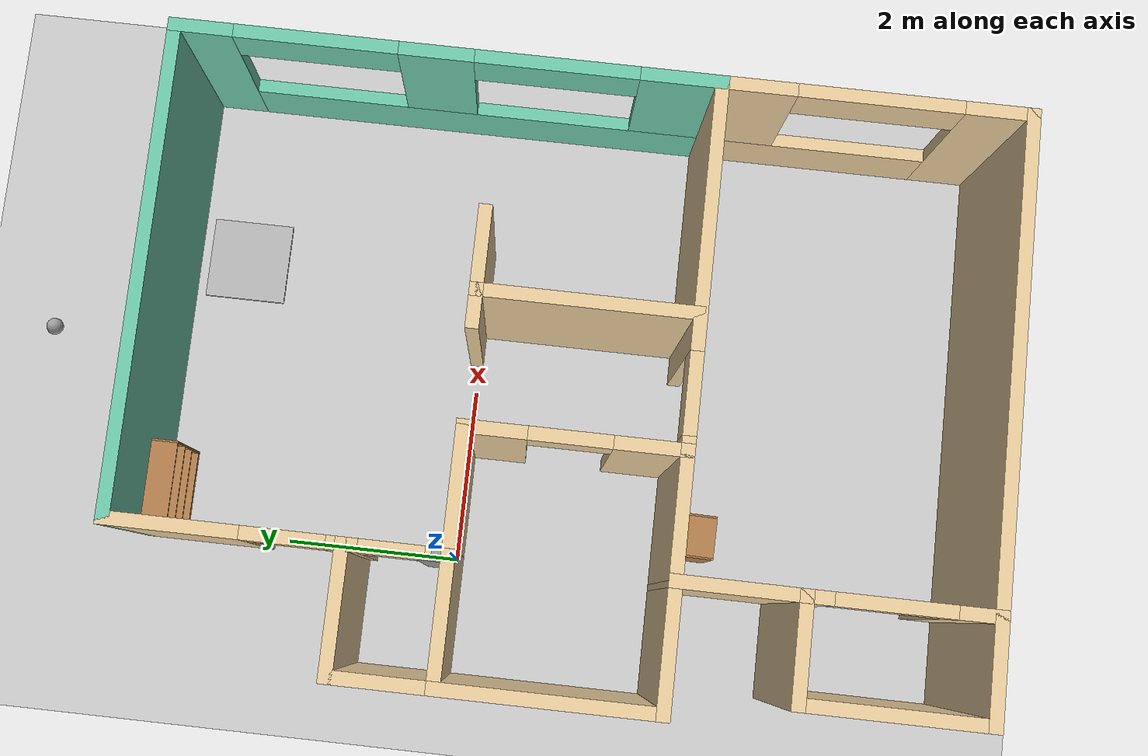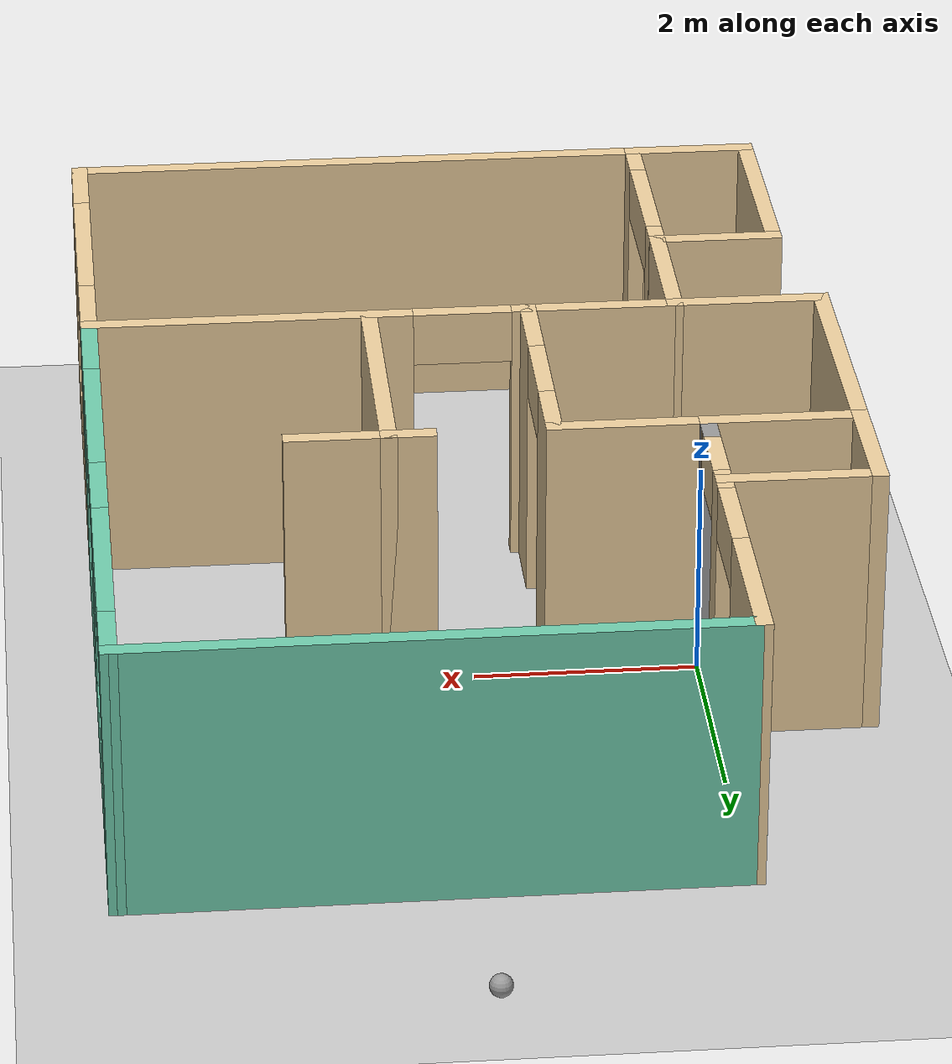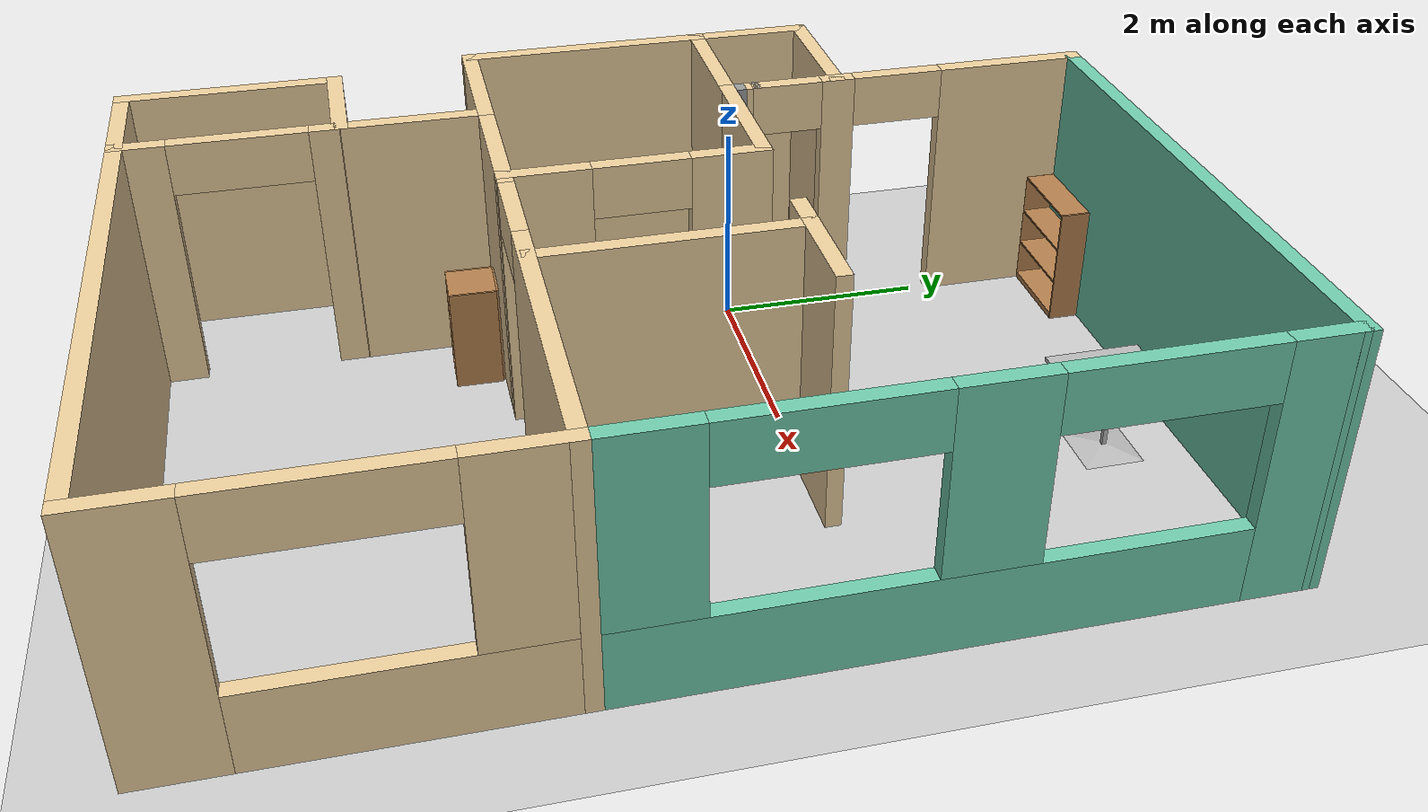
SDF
<sdf version="1.6">
 <world name="default">
  <plugin name="hello" filename="libhello.so"/>
  <light name="sun" type="directional">
   <pose>0 0 10 0 -0 0</pose>
   <diffuse>0.8 0.8 0.8 1</diffuse>
   <specular>0.2 0.2 0.2 1</specular>
   <attenuation>
    <range>1000</range>
    <constant>0.9</constant>
    <linear>0.01</linear>
    <quadratic>0.001</quadratic>
   </attenuation>
   <direction>-0.5 0.1 -0.9</direction>
  </light>
  <model name="ground_plane">
   <static>1</static>
   <link name="link">
    <collision name="collision">
     <geometry><plane><normal>0 0 1</normal><size>100 100</size></plane></geometry>
     <surface>
      <contact><collide_bitmask>65535</collide_bitmask></contact>
      <friction><ode><mu>100</mu><mu2>50</mu2></ode></friction>
     </surface>
    </collision>
    <visual name="visual">
     <cast_shadows>0</cast_shadows>
     <geometry><plane><normal>0 0 1</normal><size>100 100</size></plane></geometry>
     <material>
      <script><uri>file://media/materials/scripts/gazebo.material</uri><name>Gazebo/Grey</name></script>
     </material>
    </visual>
   </link>
  </model>
  <gravity>0 0 -9.8</gravity>
  <magnetic_field>6e-06 2.3e-05 -4.2e-05</magnetic_field>
  <atmosphere type="adiabatic"/>
  <physics name="default_physics" default="0" type="ode">
   <max_step_size>0.001</max_step_size>
   <real_time_factor>1</real_time_factor>
   <real_time_update_rate>1000</real_time_update_rate>
  </physics>
  <scene><ambient>0.4 0.4 0.4 1</ambient><background>0.7 0.7 0.7 1</background><shadows>1</shadows></scene>
  <audio><device>default</device></audio>
  <spherical_coordinates>
   <surface_model>EARTH_WGS84</surface_model>
   <latitude_deg>0</latitude_deg>
   <longitude_deg>0</longitude_deg>
   <elevation>0</elevation>
   <heading_deg>0</heading_deg>
  </spherical_coordinates>
  <model name="combined_model">
   <model name="apt_1br">
    <pose>0.440605 -1.37151 0 0 -0 0</pose>
    <link name="Wall_10">
     <collision name="Wall_10_Collision">
      <geometry><box><size>5.5 0.15 2.5</size></box></geometry>
      <pose>0 0 1.25 0 -0 0</pose>
     </collision>
     <visual name="Wall_10_Visual">
      <pose>0 0 1.25 0 -0 0</pose>
      <geometry><box><size>5.5 0.15 2.5</size></box></geometry>
      <material>
       <script><uri>file://media/materials/scripts/gazebo.material</uri><name>Gazebo/Grey</name></script>
       <ambient>0.921569 0.807843 0.615686 1</ambient>
      </material>
      <meta><layer>0</layer></meta>
     </visual>
     <pose>0.674919 -4.65002 0 0 -0 3.14159</pose>
    </link>
    <link name="Wall_21">
     <collision name="Wall_21_Collision">
      <geometry><box><size>1.5 0.15 2.5</size></box></geometry>
      <pose>0 0 1.25 0 -0 0</pose>
     </collision>
     <visual name="Wall_21_Visual">
      <pose>0 0 1.25 0 -0 0</pose>
      <geometry><box><size>1.5 0.15 2.5</size></box></geometry>
      <material>
       <script><uri>file://media/materials/scripts/gazebo.material</uri><name>Gazebo/Grey</name></script>
       <ambient>0.921569 0.807843 0.615686 1</ambient>
      </material>
      <meta><layer>0</layer></meta>
     </visual>
     <pose>-1.32508 1.04998 0 0 -0 3.14159</pose>
    </link>
    <link name="Wall_29">
     <pose>3.34992 1.67498 0 0 -0 -1.5708</pose>
     <visual name="Wall_29_Visual_0">
      <pose>-2.69448 0 1.25 0 -0 0</pose>
      <geometry><box><size>0.71105 0.15 2.5</size></box></geometry>
      <material>
       <script><uri>file://media/materials/scripts/gazebo.material</uri><name>Gazebo/Grey</name></script>
       <ambient>0.435294 0.796078 0.67451 1</ambient>
      </material>
      <meta><layer>0</layer></meta>
     </visual>
     <collision name="Wall_29_Collision_0">
      <geometry><box><size>0.71105 0.15 2.5</size></box></geometry>
      <pose>-2.69448 0 1.25 0 -0 0</pose>
     </collision>
     <visual name="Wall_29_Visual_1">
      <pose>0.355525 0 0.375 0 -0 0</pose>
      <geometry><box><size>5.38895 0.15 0.75</size></box></geometry>
      <material>
       <script><uri>file://media/materials/scripts/gazebo.material</uri><name>Gazebo/Grey</name></script>
       <ambient>0.435294 0.796078 0.67451 1</ambient>
      </material>
      <meta><layer>0</layer></meta>
     </visual>
     <collision name="Wall_29_Collision_1">
      <geometry><box><size>5.38895 0.15 0.75</size></box></geometry>
      <pose>0.355525 0 0.375 0 -0 0</pose>
     </collision>
     <visual name="Wall_29_Visual_2">
      <pose>-0.124805 0 1.625 0 -0 0</pose>
      <geometry><box><size>0.82829 0.15 1.75</size></box></geometry>
      <material>
       <script><uri>file://media/materials/scripts/gazebo.material</uri><name>Gazebo/Grey</name></script>
       <ambient>0.435294 0.796078 0.67451 1</ambient>
      </material>
      <meta><layer>0</layer></meta>
     </visual>
     <collision name="Wall_29_Collision_2">
      <geometry><box><size>0.82829 0.15 1.75</size></box></geometry>
      <pose>-0.124805 0 1.625 0 -0 0</pose>
     </collision>
     <visual name="Wall_29_Visual_3">
      <pose>2.56967 0 1.625 0 -0 0</pose>
      <geometry><box><size>0.96066 0.15 1.75</size></box></geometry>
      <material>
       <script><uri>file://media/materials/scripts/gazebo.material</uri><name>Gazebo/Grey</name></script>
       <ambient>0.435294 0.796078 0.67451 1</ambient>
      </material>
      <meta><layer>0</layer></meta>
     </visual>
     <collision name="Wall_29_Collision_3">
      <geometry><box><size>0.96066 0.15 1.75</size></box></geometry>
      <pose>2.56967 0 1.625 0 -0 0</pose>
     </collision>
     <visual name="Wall_29_Visual_4">
      <pose>-1.43895 0 2.225 0 -0 0</pose>
      <geometry><box><size>1.8 0.15 0.55</size></box></geometry>
      <material>
       <script><uri>file://media/materials/scripts/gazebo.material</uri><name>Gazebo/Grey</name></script>
       <ambient>0.435294 0.796078 0.67451 1</ambient>
      </material>
      <meta><layer>0</layer></meta>
     </visual>
     <collision name="Wall_29_Collision_4">
      <geometry><box><size>1.8 0.15 0.55</size></box></geometry>
      <pose>-1.43895 0 2.225 0 -0 0</pose>
     </collision>
     <visual name="Wall_29_Visual_5">
      <pose>1.18934 0 2.225 0 -0 0</pose>
      <geometry><box><size>1.8 0.15 0.55</size></box></geometry>
      <material>
       <script><uri>file://media/materials/scripts/gazebo.material</uri><name>Gazebo/Grey</name></script>
       <ambient>0.435294 0.796078 0.67451 1</ambient>
      </material>
      <meta><layer>0</layer></meta>
     </visual>
     <collision name="Wall_29_Collision_5">
      <geometry><box><size>1.8 0.15 0.55</size></box></geometry>
      <pose>1.18934 0 2.225 0 -0 0</pose>
     </collision>
    </link>
    <link name="Wall_31">
     <pose>3.34992 -2.97502 0 0 -0 1.5708</pose>
     <visual name="Wall_31_Visual_0">
      <pose>-1.34686 0 1.25 0 -0 0</pose>
      <geometry><box><size>0.806273 0.15 2.5</size></box></geometry>
      <material>
       <script><uri>file://media/materials/scripts/gazebo.material</uri><name>Gazebo/Grey</name></script>
       <ambient>0.921569 0.807843 0.615686 1</ambient>
      </material>
      <meta><layer>0</layer></meta>
     </visual>
     <collision name="Wall_31_Collision_0">
      <geometry><box><size>0.806273 0.15 2.5</size></box></geometry>
      <pose>-1.34686 0 1.25 0 -0 0</pose>
     </collision>
     <visual name="Wall_31_Visual_1">
      <pose>0.403136 0 0.375 0 -0 0</pose>
      <geometry><box><size>2.69373 0.15 0.75</size></box></geometry>
      <material>
       <script><uri>file://media/materials/scripts/gazebo.material</uri><name>Gazebo/Grey</name></script>
       <ambient>0.921569 0.807843 0.615686 1</ambient>
      </material>
      <meta><layer>0</layer></meta>
     </visual>
     <collision name="Wall_31_Collision_1">
      <geometry><box><size>2.69373 0.15 0.75</size></box></geometry>
      <pose>0.403136 0 0.375 0 -0 0</pose>
     </collision>
     <visual name="Wall_31_Visual_2">
      <pose>1.30314 0 1.625 0 -0 0</pose>
      <geometry><box><size>0.893727 0.15 1.75</size></box></geometry>
      <material>
       <script><uri>file://media/materials/scripts/gazebo.material</uri><name>Gazebo/Grey</name></script>
       <ambient>0.921569 0.807843 0.615686 1</ambient>
      </material>
      <meta><layer>0</layer></meta>
     </visual>
     <collision name="Wall_31_Collision_2">
      <geometry><box><size>0.893727 0.15 1.75</size></box></geometry>
      <pose>1.30314 0 1.625 0 -0 0</pose>
     </collision>
     <visual name="Wall_31_Visual_3">
      <pose>-0.043727 0 2.225 0 -0 0</pose>
      <geometry><box><size>1.8 0.15 0.55</size></box></geometry>
      <material>
       <script><uri>file://media/materials/scripts/gazebo.material</uri><name>Gazebo/Grey</name></script>
       <ambient>0.921569 0.807843 0.615686 1</ambient>
      </material>
      <meta><layer>0</layer></meta>
     </visual>
     <collision name="Wall_31_Collision_3">
      <geometry><box><size>1.8 0.15 0.55</size></box></geometry>
      <pose>-0.043727 0 2.225 0 -0 0</pose>
     </collision>
    </link>
    <link name="Wall_33">
     <pose>-0.650081 -0.125024 0 0 -0 -1.5708</pose>
     <visual name="Wall_33_Visual_0">
      <pose>-0.874194 0 1.25 0 -0 0</pose>
      <geometry><box><size>0.751611 0.15 2.5</size></box></geometry>
      <material>
       <script><uri>file://media/materials/scripts/gazebo.material</uri><name>Gazebo/Grey</name></script>
       <ambient>0.921569 0.807843 0.615686 1</ambient>
      </material>
      <meta><layer>0</layer></meta>
     </visual>
     <collision name="Wall_33_Collision_0">
      <geometry><box><size>0.751611 0.15 2.5</size></box></geometry>
      <pose>-0.874194 0 1.25 0 -0 0</pose>
     </collision>
     <visual name="Wall_33_Visual_1">
      <pose>0.825806 0 1.25 0 -0 0</pose>
      <geometry><box><size>0.848389 0.15 2.5</size></box></geometry>
      <material>
       <script><uri>file://media/materials/scripts/gazebo.material</uri><name>Gazebo/Grey</name></script>
       <ambient>0.921569 0.807843 0.615686 1</ambient>
      </material>
      <meta><layer>0</layer></meta>
     </visual>
     <collision name="Wall_33_Collision_1">
      <geometry><box><size>0.848389 0.15 2.5</size></box></geometry>
      <pose>0.825806 0 1.25 0 -0 0</pose>
     </collision>
     <visual name="Wall_33_Visual_2">
      <pose>-0.048389 0 2.25 0 -0 0</pose>
      <geometry><box><size>0.9 0.15 0.5</size></box></geometry>
      <material>
       <script><uri>file://media/materials/scripts/gazebo.material</uri><name>Gazebo/Grey</name></script>
       <ambient>0.921569 0.807843 0.615686 1</ambient>
      </material>
      <meta><layer>0</layer></meta>
     </visual>
     <collision name="Wall_33_Collision_2">
      <geometry><box><size>0.9 0.15 0.5</size></box></geometry>
      <pose>-0.048389 0 2.25 0 -0 0</pose>
     </collision>
    </link>
    <link name="Wall_34">
     <collision name="Wall_34_Collision">
      <geometry><box><size>1.5 0.15 2.5</size></box></geometry>
      <pose>0 0 1.25 0 -0 0</pose>
     </collision>
     <visual name="Wall_34_Visual">
      <pose>0 0 1.25 0 -0 0</pose>
      <geometry><box><size>1.5 0.15 2.5</size></box></geometry>
      <material>
       <script><uri>file://media/materials/scripts/gazebo.material</uri><name>Gazebo/Grey</name></script>
       <ambient>0.921569 0.807843 0.615686 1</ambient>
      </material>
      <meta><layer>0</layer></meta>
     </visual>
     <pose>-1.32508 -1.30002 0 0 -0 3.14159</pose>
    </link>
    <link name="Wall_36">
     <pose>1.34992 -1.30002 0 0 -0 0</pose>
     <visual name="Wall_36_Visual_0">
      <pose>-1.96133 0 1.25 0 -0 0</pose>
      <geometry><box><size>0.227341 0.15 2.5</size></box></geometry>
      <material>
       <script><uri>file://media/materials/scripts/gazebo.material</uri><name>Gazebo/Grey</name></script>
       <ambient>0.921569 0.807843 0.615686 1</ambient>
      </material>
      <meta><layer>0</layer></meta>
     </visual>
     <collision name="Wall_36_Collision_0">
      <geometry><box><size>0.227341 0.15 2.5</size></box></geometry>
      <pose>-1.96133 0 1.25 0 -0 0</pose>
     </collision>
     <visual name="Wall_36_Visual_1">
      <pose>0.56367 0 1.25 0 -0 0</pose>
      <geometry><box><size>3.02266 0.15 2.5</size></box></geometry>
      <material>
       <script><uri>file://media/materials/scripts/gazebo.material</uri><name>Gazebo/Grey</name></script>
       <ambient>0.921569 0.807843 0.615686 1</ambient>
      </material>
      <meta><layer>0</layer></meta>
     </visual>
     <collision name="Wall_36_Collision_1">
      <geometry><box><size>3.02266 0.15 2.5</size></box></geometry>
      <pose>0.56367 0 1.25 0 -0 0</pose>
     </collision>
     <visual name="Wall_36_Visual_2">
      <pose>-1.39766 0 2.25 0 -0 0</pose>
      <geometry><box><size>0.9 0.15 0.5</size></box></geometry>
      <material>
       <script><uri>file://media/materials/scripts/gazebo.material</uri><name>Gazebo/Grey</name></script>
       <ambient>0.921569 0.807843 0.615686 1</ambient>
      </material>
      <meta><layer>0</layer></meta>
     </visual>
     <collision name="Wall_36_Collision_2">
      <geometry><box><size>0.9 0.15 0.5</size></box></geometry>
      <pose>-1.39766 0 2.25 0 -0 0</pose>
     </collision>
    </link>
    <link name="Wall_38">
     <collision name="Wall_38_Collision">
      <geometry><box><size>2.5 0.15 2.5</size></box></geometry>
      <pose>0 0 1.25 0 -0 0</pose>
     </collision>
     <visual name="Wall_38_Visual">
      <pose>0 0 1.25 0 -0 0</pose>
      <geometry><box><size>2.5 0.15 2.5</size></box></geometry>
      <material>
       <script><uri>file://media/materials/scripts/gazebo.material</uri><name>Gazebo/Grey</name></script>
       <ambient>0.921569 0.807843 0.615686 1</ambient>
      </material>
      <meta><layer>0</layer></meta>
     </visual>
     <pose>0.806186 -0.096149 0 0 -0 1.5708</pose>
    </link>
    <link name="Wall_41">
     <collision name="Wall_41_Collision">
      <geometry><box><size>1 0.15 2.5</size></box></geometry>
      <pose>0 0 1.25 0 -0 0</pose>
     </collision>
     <visual name="Wall_41_Visual">
      <pose>0 0 1.25 0 -0 0</pose>
      <geometry><box><size>1 0.15 2.5</size></box></geometry>
      <material>
       <script><uri>file://media/materials/scripts/gazebo.material</uri><name>Gazebo/Grey</name></script>
       <ambient>0.921569 0.807843 0.615686 1</ambient>
      </material>
      <meta><layer>0</layer></meta>
     </visual>
     <pose>1.23119 1.07885 0 0 -0 0</pose>
    </link>
    <link name="Wall_43">
     <collision name="Wall_43_Collision">
      <geometry><box><size>0.5 0.15 2.5</size></box></geometry>
      <pose>0 0 1.25 0 -0 0</pose>
     </collision>
     <visual name="Wall_43_Visual">
      <pose>0 0 1.25 0 -0 0</pose>
      <geometry><box><size>0.5 0.15 2.5</size></box></geometry>
      <material>
       <script><uri>file://media/materials/scripts/gazebo.material</uri><name>Gazebo/Grey</name></script>
       <ambient>0.921569 0.807843 0.615686 1</ambient>
      </material>
      <meta><layer>0</layer></meta>
     </visual>
     <pose>0.631186 1.07885 0 0 -0 3.14159</pose>
    </link>
    <link name="Wall_5">
     <pose>-2.00008 2.96898 0 0 -0 1.5708</pose>
     <visual name="Wall_5_Visual_0">
      <pose>-1.71167 0 1.25 0 -0 0</pose>
      <geometry><box><size>0.064664 0.15 2.5</size></box></geometry>
      <material>
       <script><uri>file://media/materials/scripts/gazebo.material</uri><name>Gazebo/Grey</name></script>
       <ambient>0.921569 0.807843 0.615686 1</ambient>
      </material>
      <meta><layer>0</layer></meta>
     </visual>
     <collision name="Wall_5_Collision_0">
      <geometry><box><size>0.064664 0.15 2.5</size></box></geometry>
      <pose>-1.71167 0 1.25 0 -0 0</pose>
     </collision>
     <visual name="Wall_5_Visual_1">
      <pose>-0.81386 0 1.25 0 -0 0</pose>
      <geometry><box><size>0.330951 0.15 2.5</size></box></geometry>
      <material>
       <script><uri>file://media/materials/scripts/gazebo.material</uri><name>Gazebo/Grey</name></script>
       <ambient>0.921569 0.807843 0.615686 1</ambient>
      </material>
      <meta><layer>0</layer></meta>
     </visual>
     <collision name="Wall_5_Collision_1">
      <geometry><box><size>0.330951 0.15 2.5</size></box></geometry>
      <pose>-0.81386 0 1.25 0 -0 0</pose>
     </collision>
     <visual name="Wall_5_Visual_2">
      <pose>0.997808 0 1.25 0 -0 0</pose>
      <geometry><box><size>1.49239 0.15 2.5</size></box></geometry>
      <material>
       <script><uri>file://media/materials/scripts/gazebo.material</uri><name>Gazebo/Grey</name></script>
       <ambient>0.921569 0.807843 0.615686 1</ambient>
      </material>
      <meta><layer>0</layer></meta>
     </visual>
     <collision name="Wall_5_Collision_2">
      <geometry><box><size>1.49239 0.15 2.5</size></box></geometry>
      <pose>0.997808 0 1.25 0 -0 0</pose>
     </collision>
     <visual name="Wall_5_Visual_3">
      <pose>-1.32934 0 2.25 0 -0 0</pose>
      <geometry><box><size>0.7 0.15 0.5</size></box></geometry>
      <material>
       <script><uri>file://media/materials/scripts/gazebo.material</uri><name>Gazebo/Grey</name></script>
       <ambient>0.921569 0.807843 0.615686 1</ambient>
      </material>
      <meta><layer>0</layer></meta>
     </visual>
     <collision name="Wall_5_Collision_3">
      <geometry><box><size>0.7 0.15 0.5</size></box></geometry>
      <pose>-1.32934 0 2.25 0 -0 0</pose>
     </collision>
     <visual name="Wall_5_Visual_4">
      <pose>-0.198385 0 2.25 0 -0 0</pose>
      <geometry><box><size>0.9 0.15 0.5</size></box></geometry>
      <material>
       <script><uri>file://media/materials/scripts/gazebo.material</uri><name>Gazebo/Grey</name></script>
       <ambient>0.921569 0.807843 0.615686 1</ambient>
      </material>
      <meta><layer>0</layer></meta>
     </visual>
     <collision name="Wall_5_Collision_4">
      <geometry><box><size>0.9 0.15 0.5</size></box></geometry>
      <pose>-0.198385 0 2.25 0 -0 0</pose>
     </collision>
    </link>
    <link name="Wall_54">
     <collision name="Wall_54_Collision">
      <geometry><box><size>1.5 0.15 2.5</size></box></geometry>
      <pose>0 0 1.25 0 -0 0</pose>
     </collision>
     <visual name="Wall_54_Visual">
      <pose>0 0 1.25 0 -0 0</pose>
      <geometry><box><size>1.5 0.15 2.5</size></box></geometry>
      <material>
       <script><uri>file://media/materials/scripts/gazebo.material</uri><name>Gazebo/Grey</name></script>
       <ambient>0.921569 0.807843 0.615686 1</ambient>
      </material>
      <meta><layer>0</layer></meta>
     </visual>
     <pose>-2.67508 1.04998 0 0 -0 3.14159</pose>
    </link>
    <link name="Wall_55">
     <collision name="Wall_55_Collision">
      <geometry><box><size>2.5 0.15 2.5</size></box></geometry>
      <pose>0 0 1.25 0 -0 0</pose>
     </collision>
     <visual name="Wall_55_Visual">
      <pose>0 0 1.25 0 -0 0</pose>
      <geometry><box><size>2.5 0.15 2.5</size></box></geometry>
      <material>
       <script><uri>file://media/materials/scripts/gazebo.material</uri><name>Gazebo/Grey</name></script>
       <ambient>0.921569 0.807843 0.615686 1</ambient>
      </material>
      <meta><layer>0</layer></meta>
     </visual>
     <pose>-3.35008 -0.125024 0 0 -0 -1.5708</pose>
    </link>
    <link name="Wall_56">
     <collision name="Wall_56_Collision">
      <geometry><box><size>1.5 0.15 2.5</size></box></geometry>
      <pose>0 0 1.25 0 -0 0</pose>
     </collision>
     <visual name="Wall_56_Visual">
      <pose>0 0 1.25 0 -0 0</pose>
      <geometry><box><size>1.5 0.15 2.5</size></box></geometry>
      <material>
       <script><uri>file://media/materials/scripts/gazebo.material</uri><name>Gazebo/Grey</name></script>
       <ambient>0.921569 0.807843 0.615686 1</ambient>
      </material>
      <meta><layer>0</layer></meta>
     </visual>
     <pose>-2.67508 -1.30002 0 0 -0 0</pose>
    </link>
    <link name="Wall_57">
     <collision name="Wall_57_Collision">
      <geometry><box><size>1.5 0.15 2.5</size></box></geometry>
      <pose>0 0 1.25 0 -0 0</pose>
     </collision>
     <visual name="Wall_57_Visual">
      <pose>0 0 1.25 0 -0 0</pose>
      <geometry><box><size>1.5 0.15 2.5</size></box></geometry>
      <material>
       <script><uri>file://media/materials/scripts/gazebo.material</uri><name>Gazebo/Grey</name></script>
       <ambient>0.921569 0.807843 0.615686 1</ambient>
      </material>
      <meta><layer>0</layer></meta>
     </visual>
     <pose>-2.0017 -1.97502 0 0 -0 -1.57319</pose>
    </link>
    <link name="Wall_58">
     <collision name="Wall_58_Collision">
      <geometry><box><size>1.247 0.15 2.5</size></box></geometry>
      <pose>0 0 1.25 0 -0 0</pose>
     </collision>
     <visual name="Wall_58_Visual">
      <pose>0 0 1.25 0 -0 0</pose>
      <geometry><box><size>1.247 0.15 2.5</size></box></geometry>
      <material>
       <script><uri>file://media/materials/scripts/gazebo.material</uri><name>Gazebo/Grey</name></script>
       <ambient>0.921569 0.807843 0.615686 1</ambient>
      </material>
      <meta><layer>0</layer></meta>
     </visual>
     <pose>-2.55181 -2.65002 0 0 -0 3.14159</pose>
    </link>
    <link name="Wall_6">
     <collision name="Wall_6_Collision">
      <geometry><box><size>5.5 0.15 2.5</size></box></geometry>
      <pose>0 0 1.25 0 -0 0</pose>
     </collision>
     <visual name="Wall_6_Visual">
      <pose>0 0 1.25 0 -0 0</pose>
      <geometry><box><size>5.5 0.15 2.5</size></box></geometry>
      <material>
       <script><uri>file://media/materials/scripts/gazebo.material</uri><name>Gazebo/Grey</name></script>
       <ambient>0.435294 0.796078 0.67451 1</ambient>
      </material>
      <meta><layer>0</layer></meta>
     </visual>
     <pose>0.674919 4.64398 0 0 -0 0.002243</pose>
    </link>
    <link name="Wall_62">
     <collision name="Wall_62_Collision">
      <geometry><box><size>1.25 0.15 2.5</size></box></geometry>
      <pose>0 0 1.25 0 -0 0</pose>
     </collision>
     <visual name="Wall_62_Visual">
      <pose>0 0 1.25 0 -0 0</pose>
      <geometry><box><size>1.25 0.15 2.5</size></box></geometry>
      <material>
       <script><uri>file://media/materials/scripts/gazebo.material</uri><name>Gazebo/Grey</name></script>
       <ambient>0.921569 0.807843 0.615686 1</ambient>
      </material>
      <meta><layer>0</layer></meta>
     </visual>
     <pose>-2.55008 -4.65002 0 0 -0 3.14159</pose>
    </link>
    <link name="Wall_63">
     <collision name="Wall_63_Collision">
      <geometry><box><size>2 0.15 2.5</size></box></geometry>
      <pose>0 0 1.25 0 -0 0</pose>
     </collision>
     <visual name="Wall_63_Visual">
      <pose>0 0 1.25 0 -0 0</pose>
      <geometry><box><size>2 0.15 2.5</size></box></geometry>
      <material>
       <script><uri>file://media/materials/scripts/gazebo.material</uri><name>Gazebo/Grey</name></script>
       <ambient>0.921569 0.807843 0.615686 1</ambient>
      </material>
      <meta><layer>0</layer></meta>
     </visual>
     <pose>-3.10008 -3.72502 0 0 -0 1.5708</pose>
    </link>
    <link name="Wall_65">
     <pose>-2.0017 -3.65002 0 0 -0 -1.56918</pose>
     <visual name="Wall_65_Visual_0">
      <pose>-0.895757 0 1.25 0 -0 0</pose>
      <geometry><box><size>0.358489 0.15 2.5</size></box></geometry>
      <material>
       <script><uri>file://media/materials/scripts/gazebo.material</uri><name>Gazebo/Grey</name></script>
       <ambient>0.921569 0.807843 0.615686 1</ambient>
      </material>
      <meta><layer>0</layer></meta>
     </visual>
     <collision name="Wall_65_Collision_0">
      <geometry><box><size>0.358489 0.15 2.5</size></box></geometry>
      <pose>-0.895757 0 1.25 0 -0 0</pose>
     </collision>
     <visual name="Wall_65_Visual_1">
      <pose>0.815925 0 1.25 0 -0 0</pose>
      <geometry><box><size>0.518152 0.15 2.5</size></box></geometry>
      <material>
       <script><uri>file://media/materials/scripts/gazebo.material</uri><name>Gazebo/Grey</name></script>
       <ambient>0.921569 0.807843 0.615686 1</ambient>
      </material>
      <meta><layer>0</layer></meta>
     </visual>
     <collision name="Wall_65_Collision_1">
      <geometry><box><size>0.518152 0.15 2.5</size></box></geometry>
      <pose>0.815925 0 1.25 0 -0 0</pose>
     </collision>
     <visual name="Wall_65_Visual_2">
      <pose>-0.079832 0 2.25 0 -0 0</pose>
      <geometry><box><size>1.27336 0.15 0.5</size></box></geometry>
      <material>
       <script><uri>file://media/materials/scripts/gazebo.material</uri><name>Gazebo/Grey</name></script>
       <ambient>0.921569 0.807843 0.615686 1</ambient>
      </material>
      <meta><layer>0</layer></meta>
     </visual>
     <collision name="Wall_65_Collision_2">
      <geometry><box><size>1.27336 0.15 0.5</size></box></geometry>
      <pose>-0.079832 0 2.25 0 -0 0</pose>
     </collision>
    </link>
    <link name="Wall_70">
     <collision name="Wall_70_Collision">
      <geometry><box><size>1.25 0.15 2.5</size></box></geometry>
      <pose>0 0 1.25 0 -0 0</pose>
     </collision>
     <visual name="Wall_70_Visual">
      <pose>0 0 1.25 0 -0 0</pose>
      <geometry><box><size>1.25 0.15 2.5</size></box></geometry>
      <material>
       <script><uri>file://media/materials/scripts/gazebo.material</uri><name>Gazebo/Grey</name></script>
       <ambient>0.921569 0.807843 0.615686 1</ambient>
      </material>
      <meta><layer>0</layer></meta>
     </visual>
     <pose>-3.35008 1.59998 0 0 -0 1.5708</pose>
    </link>
    <link name="Wall_71">
     <collision name="Wall_71_Collision">
      <geometry><box><size>1.5 0.15 2.5</size></box></geometry>
      <pose>0 0 1.25 0 -0 0</pose>
     </collision>
     <visual name="Wall_71_Visual">
      <pose>0 0 1.25 0 -0 0</pose>
      <geometry><box><size>1.5 0.15 2.5</size></box></geometry>
      <material>
       <script><uri>file://media/materials/scripts/gazebo.material</uri><name>Gazebo/Grey</name></script>
       <ambient>0.921569 0.807843 0.615686 1</ambient>
      </material>
      <meta><layer>0</layer></meta>
     </visual>
     <pose>-2.67508 2.14998 0 0 -0 0</pose>
    </link>
    <link name="Wall_73">
     <collision name="Wall_73_Collision">
      <geometry><box><size>0.4 0.15 2.5</size></box></geometry>
      <pose>0 0 1.25 0 -0 0</pose>
     </collision>
     <visual name="Wall_73_Visual">
      <pose>0 0 1.25 0 -0 0</pose>
      <geometry><box><size>0.4 0.15 2.5</size></box></geometry>
      <material>
       <script><uri>file://media/materials/scripts/gazebo.material</uri><name>Gazebo/Grey</name></script>
       <ambient>1 1 1 1</ambient>
      </material>
      <meta><layer>0</layer></meta>
     </visual>
     <pose>-2.00008 1.17498 0 0 -0 1.5708</pose>
    </link>
    <static>1</static>
   </model>
   <model name="bookshelf">
    <static>1</static>
    <link name="link">
     <inertial><mass>1</mass></inertial>
     <collision name="back">
      <pose>0 0.005 0.6 0 -0 0</pose>
      <geometry><box><size>0.9 0.01 1.2</size></box></geometry>
     </collision>
     <visual name="visual1">
      <pose>0 0.005 0.6 0 -0 0</pose>
      <geometry><box><size>0.9 0.01 1.2</size></box></geometry>
      <material>
       <script><uri>file://media/materials/scripts/gazebo.material</uri><name>Gazebo/Wood</name></script>
      </material>
     </visual>
     <collision name="left_side">
      <pose>0.45 -0.195 0.6 0 -0 0</pose>
      <geometry><box><size>0.02 0.4 1.2</size></box></geometry>
     </collision>
     <visual name="visual2">
      <pose>0.45 -0.195 0.6 0 -0 0</pose>
      <geometry><box><size>0.02 0.4 1.2</size></box></geometry>
      <material>
       <script><uri>file://media/materials/scripts/gazebo.material</uri><name>Gazebo/Wood</name></script>
      </material>
     </visual>
     <collision name="right_side">
      <pose>-0.45 -0.195 0.6 0 -0 0</pose>
      <geometry><box><size>0.02 0.4 1.2</size></box></geometry>
     </collision>
     <visual name="visual3">
      <pose>-0.45 -0.195 0.6 0 -0 0</pose>
      <geometry><box><size>0.02 0.4 1.2</size></box></geometry>
      <material>
       <script><uri>file://media/materials/scripts/gazebo.material</uri><name>Gazebo/Wood</name></script>
      </material>
     </visual>
     <collision name="bottom">
      <pose>0 -0.195 0.03 0 -0 0</pose>
      <geometry><box><size>0.88 0.4 0.06</size></box></geometry>
     </collision>
     <visual name="visual4">
      <pose>0 -0.195 0.03 0 -0 0</pose>
      <geometry><box><size>0.88 0.4 0.06</size></box></geometry>
      <material>
       <script><uri>file://media/materials/scripts/gazebo.material</uri><name>Gazebo/Wood</name></script>
      </material>
     </visual>
     <collision name="top">
      <pose>0 -0.195 1.19 0 -0 0</pose>
      <geometry><box><size>0.88 0.4 0.02</size></box></geometry>
     </collision>
     <visual name="visual5">
      <pose>0 -0.195 1.19 0 -0 0</pose>
      <geometry><box><size>0.88 0.4 0.02</size></box></geometry>
      <material>
       <script><uri>file://media/materials/scripts/gazebo.material</uri><name>Gazebo/Wood</name></script>
      </material>
     </visual>
     <collision name="low_shelf">
      <pose>0 -0.195 0.43 0 -0 0</pose>
      <geometry><box><size>0.88 0.4 0.02</size></box></geometry>
     </collision>
     <visual name="visual6">
      <pose>0 -0.195 0.43 0 -0 0</pose>
      <geometry><box><size>0.88 0.4 0.02</size></box></geometry>
      <material>
       <script><uri>file://media/materials/scripts/gazebo.material</uri><name>Gazebo/Wood</name></script>
      </material>
     </visual>
     <collision name="high_shelf">
      <pose>0 -0.195 0.8 0 -0 0</pose>
      <geometry><box><size>0.88 0.4 0.02</size></box></geometry>
     </collision>
     <visual name="visual7">
      <pose>0 -0.195 0.8 0 -0 0</pose>
      <geometry><box><size>0.88 0.4 0.02</size></box></geometry>
      <material>
       <script><uri>file://media/materials/scripts/gazebo.material</uri><name>Gazebo/Wood</name></script>
      </material>
     </visual>
    </link>
    <pose>-1.04171 3.29108 0 0 -0 0</pose>
   </model>
   <model name="cabinet">
    <static>1</static>
    <link name="cabinet_bottom_plate">
     <inertial>
      <pose>0 0 -1 0 -0 0</pose>
      <inertia><ixx>2.05</ixx><ixy>0</ixy><ixz>0</ixz><iyy>2.05</iyy><iyz>0</iyz><izz>2.05</izz></inertia>
      <mass>25</mass>
     </inertial>
     <collision name="cabinet_bottom_plate_geom">
      <pose>0 0 0.01 0 -0 0</pose>
      <geometry><box><size>0.45 0.45 0.02</size></box></geometry>
     </collision>
     <visual name="cabinet_bottom_plate_geom_visual">
      <pose>0 0 0.01 0 -0 0</pose>
      <geometry><box><size>0.45 0.45 0.02</size></box></geometry>
      <material>
       <script><uri>file://media/materials/scripts/gazebo.material</uri><name>Gazebo/Wood</name></script>
      </material>
     </visual>
     <collision name="cabinet_bottom_plate_geom_cabinet_back_plate">
      <pose>0.235 0 0.51 0 -0 0</pose>
      <geometry><box><size>0.02 0.45 1.02</size></box></geometry>
     </collision>
     <visual name="cabinet_bottom_plate_geom_cabinet_back_plate_visual">
      <pose>0.235 0 0.51 0 -0 0</pose>
      <geometry><box><size>0.02 0.45 1.02</size></box></geometry>
      <material>
       <script><uri>file://media/materials/scripts/gazebo.material</uri><name>Gazebo/Wood</name></script>
      </material>
     </visual>
     <collision name="cabinet_bottom_plate_geom_cabinet_left_plate">
      <pose>0 0.235 0.51 0 -0 0</pose>
      <geometry><box><size>0.45 0.02 1.02</size></box></geometry>
     </collision>
     <visual name="cabinet_bottom_plate_geom_cabinet_left_plate_visual">
      <pose>0 0.235 0.51 0 -0 0</pose>
      <geometry><box><size>0.45 0.02 1.02</size></box></geometry>
      <material>
       <script><uri>file://media/materials/scripts/gazebo.material</uri><name>Gazebo/Wood</name></script>
      </material>
     </visual>
     <collision name="cabinet_bottom_plate_geom_cabinet_middle_plate">
      <pose>0 0 0.51 0 -0 0</pose>
      <geometry><box><size>0.45 0.45 0.02</size></box></geometry>
     </collision>
     <visual name="cabinet_bottom_plate_geom_cabinet_middle_plate_visual">
      <pose>0 0 0.51 0 -0 0</pose>
      <geometry><box><size>0.45 0.45 0.02</size></box></geometry>
      <material>
       <script><uri>file://media/materials/scripts/gazebo.material</uri><name>Gazebo/Wood</name></script>
      </material>
     </visual>
     <collision name="cabinet_bottom_plate_geom_cabinet_right_plate">
      <pose>0 -0.235 0.51 0 -0 0</pose>
      <geometry><box><size>0.45 0.02 1.02</size></box></geometry>
     </collision>
     <visual name="cabinet_bottom_plate_geom_cabinet_right_plate_visual">
      <pose>0 -0.235 0.51 0 -0 0</pose>
      <geometry><box><size>0.45 0.02 1.02</size></box></geometry>
      <material>
       <script><uri>file://media/materials/scripts/gazebo.material</uri><name>Gazebo/Wood</name></script>
      </material>
     </visual>
     <collision name="cabinet_bottom_plate_geom_cabinet_top_plate">
      <pose>0 0 1.01 0 -0 0</pose>
      <geometry><box><size>0.45 0.45 0.02</size></box></geometry>
     </collision>
     <visual name="cabinet_bottom_plate_geom_cabinet_top_plate_visual">
      <pose>0 0 1.01 0 -0 0</pose>
      <geometry><box><size>0.45 0.45 0.02</size></box></geometry>
      <material>
       <script><uri>file://media/materials/scripts/gazebo.material</uri><name>Gazebo/Wood</name></script>
      </material>
     </visual>
    </link>
    <pose>-0.989306 -2.99197 0 0 -0 1.55199</pose>
   </model>
   <model name="cafe_table">
    <static>1</static>
    <link name="link">
     <collision name="surface">
      <pose>0 0 0.755 0 -0 0</pose>
      <geometry><box><size>0.913 0.913 0.04</size></box></geometry>
     </collision>
     <collision name="column">
      <pose>0 0 0.37 0 -0 0</pose>
      <geometry><box><size>0.042 0.042 0.74</size></box></geometry>
     </collision>
     <collision name="base">
      <pose>0 0 0.02 0 -0 0</pose>
      <geometry><box><size>0.56 0.56 0.04</size></box></geometry>
     </collision>
     <visual name="visual">
      <geometry><mesh><uri>model://cafe_table/meshes/cafe_table.dae</uri></mesh></geometry>
     </visual>
    </link>
    <pose>1.64758 2.46156 0 0 -0 0</pose>
   </model>
   <static>0</static>
   <pose>1.51647 0.3219 0 0 -0 0</pose>
  </model>
  <model name="my_ball">
   <link name="link_0">
    <inertial>
     <mass>1</mass>
     <inertia><ixx>0.1</ixx><ixy>0</ixy><ixz>0</ixz><iyy>0.1</iyy><iyz>0</iyz><izz>0.1</izz></inertia>
    </inertial>
    <visual name="visual">
     <geometry><sphere><radius>0.1</radius></sphere></geometry>
     <material>
      <lighting>1</lighting>
      <script><uri>file://media/materials/scripts/gazebo.material</uri><name>Gazebo/Grey</name></script>
      <shader type="vertex"><normal_map>__default__</normal_map></shader>
      <ambient>1 1 1 1</ambient>
      <diffuse>1 1 1 1</diffuse>
      <specular>1 1 1 1</specular>
      <emissive>1 1 1 1</emissive>
     </material>
    </visual>
    <collision name="collision">
     <geometry><sphere><radius>0.1</radius></sphere></geometry>
     <surface>
      <friction>
       <ode><mu>1</mu><mu2>1</mu2><fdir1>0 0 0</fdir1><slip1>0</slip1><slip2>0</slip2></ode>
       <torsional>
        <coefficient>1</coefficient>
        <patch_radius>0</patch_radius>
        <surface_radius>0</surface_radius>
        <use_patch_radius>1</use_patch_radius>
        <ode><slip>0</slip></ode>
       </torsional>
      </friction>
      <bounce><restitution_coefficient>0</restitution_coefficient><threshold>1e+06</threshold></bounce>
      <contact>
       <collide_without_contact>0</collide_without_contact>
       <collide_without_contact_bitmask>1</collide_without_contact_bitmask>
       <collide_bitmask>1</collide_bitmask>
       <ode>
        <soft_cfm>0</soft_cfm>
        <soft_erp>0.2</soft_erp>
        <kp>1e+13</kp>
        <kd>1</kd>
        <max_vel>0.01</max_vel>
        <min_depth>0</min_depth>
       </ode>
       <bullet>
        <split_impulse>1</split_impulse>
        <split_impulse_penetration_threshold>-0.01</split_impulse_penetration_threshold>
        <soft_cfm>0</soft_cfm>
        <soft_erp>0.2</soft_erp>
        <kp>1e+13</kp>
        <kd>1</kd>
       </bullet>
      </contact>
     </surface>
    </collision>
   </link>
   <static>0</static>
   <pose>2.24754 5.14796 0.1 0 -0 0</pose>
  </model>
 </world>
</sdf>
